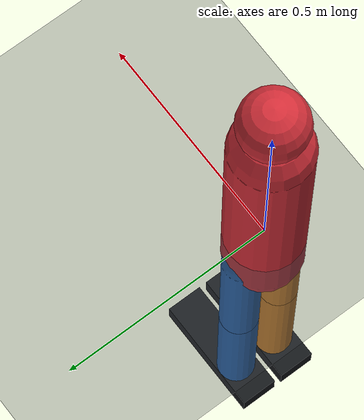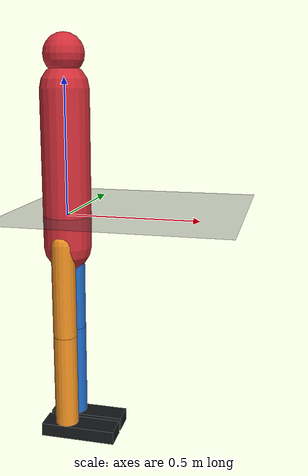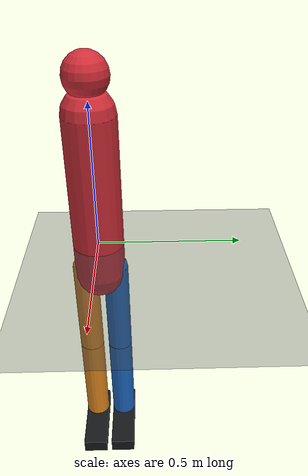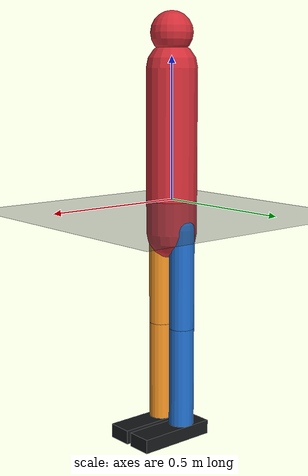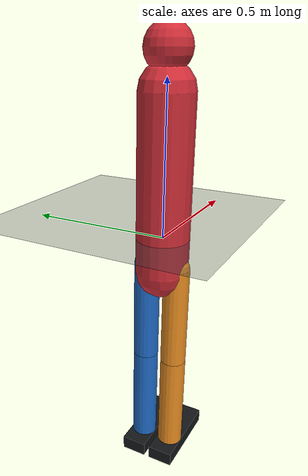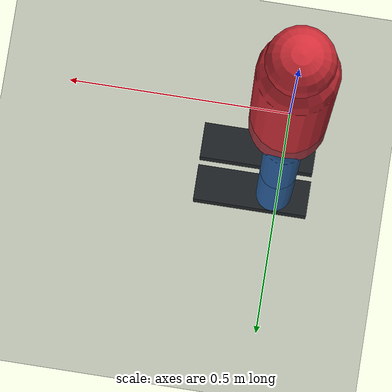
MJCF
<mujoco model="myjoco_planar_walker">
  <compiler angle="radian" autolimits="true"/>

  <option timestep="0.002" integrator="implicitfast" solver="Newton" iterations="40" ls_iterations="10"/>

  <visual>
    <global azimuth="90" elevation="-14" offwidth="1280" offheight="720"/>
    <map force="0.1" znear="0.01"/>
    <rgba haze="0.12 0.16 0.20 1"/>
  </visual>

  <asset>
    <texture name="grid" type="2d" builtin="checker" width="512" height="512"
             rgb1="0.24 0.26 0.28" rgb2="0.18 0.20 0.22"/>
    <material name="floor_mat" texture="grid" texrepeat="5 1" texuniform="true"
              reflectance="0.15"/>
    <material name="torso_mat" rgba="0.82 0.18 0.22 1"/>
    <material name="left_leg_mat" rgba="0.12 0.42 0.78 1"/>
    <material name="right_leg_mat" rgba="0.92 0.56 0.13 1"/>
    <material name="foot_mat" rgba="0.08 0.09 0.10 1"/>
  </asset>

  <default>
    <joint armature="0.03" damping="0.4" frictionloss="0.02"/>
    <geom condim="3" density="900" friction="1.3 0.02 0.001"/>
    <default class="leg">
      <joint axis="0 1 0" limited="true"/>
      <geom type="capsule" size="0.045"/>
    </default>
  </default>

  <worldbody>
    <light name="key" pos="-3 -4 5" dir="0.5 0.5 -1" diffuse="0.9 0.9 0.9"/>
    <light name="fill" pos="4 3 3" dir="-0.5 -0.2 -1" diffuse="0.35 0.35 0.4"/>
    <geom name="floor" type="plane" pos="0 0 0" size="30 1.6 0.05" material="floor_mat"/>

    <body name="torso" pos="0 0 0">
      <joint name="root_x" type="slide" axis="1 0 0" limited="false" damping="0.05"/>
      <joint name="root_z" type="slide" axis="0 0 1" range="0.45 1.45" damping="0.2"/>
      <joint name="root_pitch" type="hinge" axis="0 1 0" range="-0.65 0.65" damping="0.25"/>
      <geom name="torso_geom" type="capsule" fromto="0 0 -0.12 0 0 0.46"
            size="0.09" mass="7.0" material="torso_mat"/>
      <geom name="head_geom" type="sphere" pos="0 0 0.58" size="0.075" mass="0.8"
            material="torso_mat"/>

      <body name="left_thigh" pos="0 0.055 -0.10">
        <joint name="left_hip" class="leg" range="-1.05 0.95"/>
        <geom name="left_thigh_geom" class="leg" fromto="0 0 0 0 0 -0.36"
              mass="1.8" material="left_leg_mat"/>
        <body name="left_shin" pos="0 0 -0.36">
          <joint name="left_knee" class="leg" range="-0.05 1.55"/>
          <geom name="left_shin_geom" class="leg" fromto="0 0 0 0 0 -0.36"
                mass="1.25" material="left_leg_mat"/>
          <body name="left_foot" pos="0 0 -0.36">
            <joint name="left_ankle" class="leg" range="-0.8 0.8"/>
            <geom name="left_foot_geom" type="box" pos="0.055 0 -0.025"
                  size="0.145 0.045 0.025" mass="0.55" material="foot_mat"/>
          </body>
        </body>
      </body>

      <body name="right_thigh" pos="0 -0.055 -0.10">
        <joint name="right_hip" class="leg" range="-1.05 0.95"/>
        <geom name="right_thigh_geom" class="leg" fromto="0 0 0 0 0 -0.36"
              mass="1.8" material="right_leg_mat"/>
        <body name="right_shin" pos="0 0 -0.36">
          <joint name="right_knee" class="leg" range="-0.05 1.55"/>
          <geom name="right_shin_geom" class="leg" fromto="0 0 0 0 0 -0.36"
                mass="1.25" material="right_leg_mat"/>
          <body name="right_foot" pos="0 0 -0.36">
            <joint name="right_ankle" class="leg" range="-0.8 0.8"/>
            <geom name="right_foot_geom" type="box" pos="0.055 0 -0.025"
                  size="0.145 0.045 0.025" mass="0.55" material="foot_mat"/>
          </body>
        </body>
      </body>
    </body>
  </worldbody>

  <actuator>
    <position name="left_hip_pos" joint="left_hip" kp="75" kv="7"
              ctrlrange="-1.05 0.95" forcerange="-90 90"/>
    <position name="left_knee_pos" joint="left_knee" kp="85" kv="7"
              ctrlrange="-0.05 1.55" forcerange="-90 90"/>
    <position name="left_ankle_pos" joint="left_ankle" kp="55" kv="5"
              ctrlrange="-0.8 0.8" forcerange="-55 55"/>
    <position name="right_hip_pos" joint="right_hip" kp="75" kv="7"
              ctrlrange="-1.05 0.95" forcerange="-90 90"/>
    <position name="right_knee_pos" joint="right_knee" kp="85" kv="7"
              ctrlrange="-0.05 1.55" forcerange="-90 90"/>
    <position name="right_ankle_pos" joint="right_ankle" kp="55" kv="5"
              ctrlrange="-0.8 0.8" forcerange="-55 55"/>
    <position name="torso_pitch_assist" joint="root_pitch" kp="180" kv="18"
              ctrlrange="-0.25 0.25" forcerange="-220 220"/>
    <position name="torso_height_assist" joint="root_z" kp="420" kv="42"
              ctrlrange="0.72 0.98" forcerange="-520 520"/>
  </actuator>

  <keyframe>
    <key name="stand" qpos="0 0.86 0 0.08 0.18 -0.12 0.08 0.18 -0.12"
         ctrl="0.08 0.18 -0.12 0.08 0.18 -0.12 0.08 0.86"/>
  </keyframe>
</mujoco>
